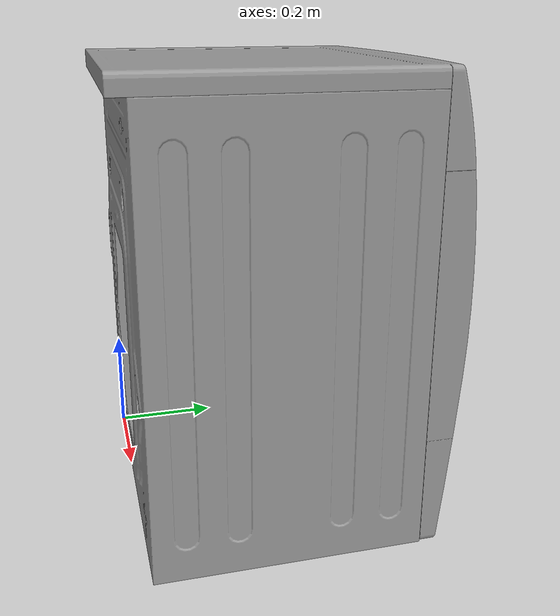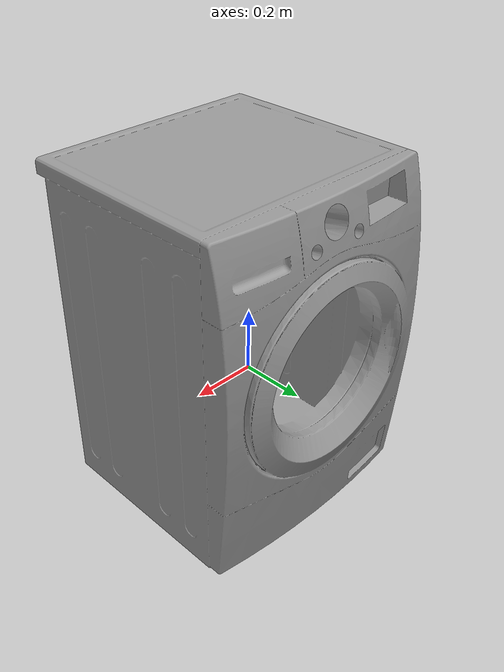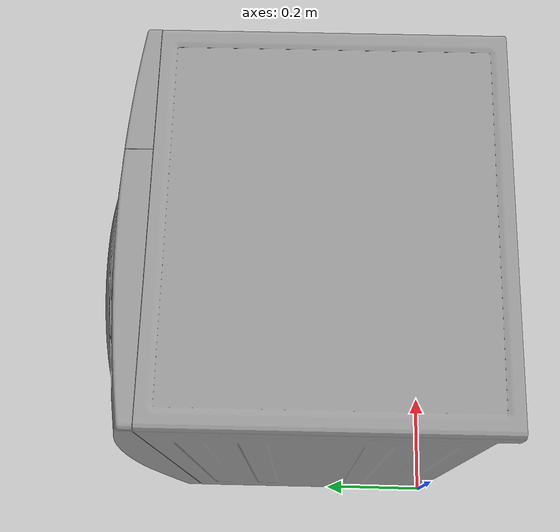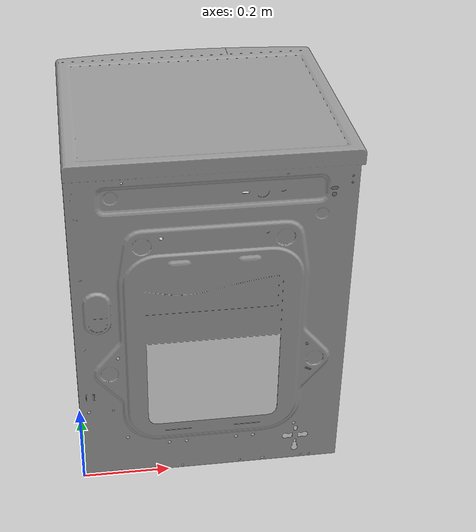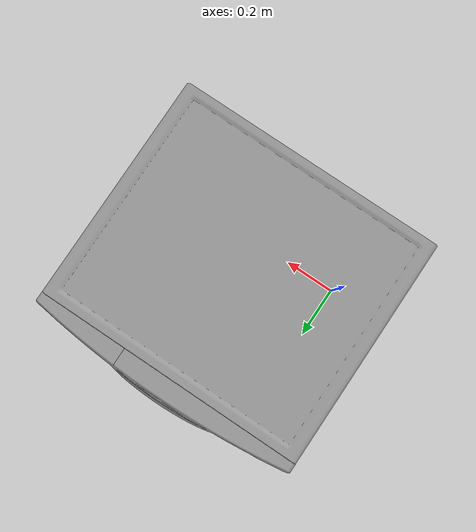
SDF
<?xml version='1.0'?>
<sdf version='1.6'>
  <model name='rai_washing_machine'>
    <link name='link_2'>
      <pose frame=''>0 0 0 0 -0 0</pose>
      <visual name='visual'>
        <pose frame=''>0 0 0 0 -0 0</pose>
        <geometry>
          <mesh>
	    <uri>model://rai_washing_machine/meshes/rai_washing_machine.STL</uri>
            <scale>1 1 1</scale>
          </mesh>
        </geometry>
        <material>
          <lighting>1</lighting>
          <script>
            <uri>file://media/materials/scripts/gazebo.material</uri>
            <name>Gazebo/Grey</name>
          </script>
          <ambient>0.45 0.45 0.45 0.45</ambient>
          <diffuse>0.45 0.45 0.45 0.45</diffuse>
          <specular>0.01 0.01 0.01 1</specular>
          <emissive>0 0 0 1</emissive>
          <shader type='vertex'>
            <normal_map>__default__</normal_map>
          </shader>
        </material>
        <cast_shadows>1</cast_shadows>
        <transparency>0</transparency>
      </visual>
      <collision name='collision'>
        <pose frame=''>0.3 0.28 0.42 0 -0 0</pose>
        <geometry>
          <box>
            <size>0.6 0.59 0.84</size>
          </box>
        </geometry>
      </collision>
    </link>
    <static>1</static>
    <allow_auto_disable>1</allow_auto_disable>
  </model>
</sdf>
